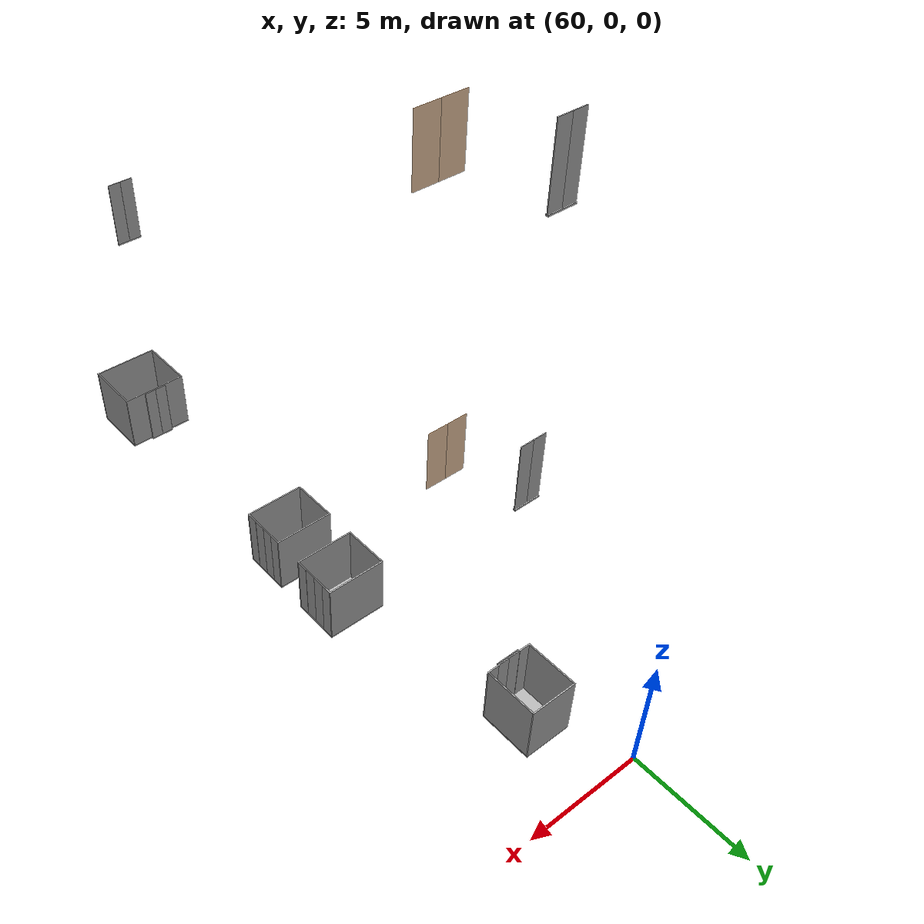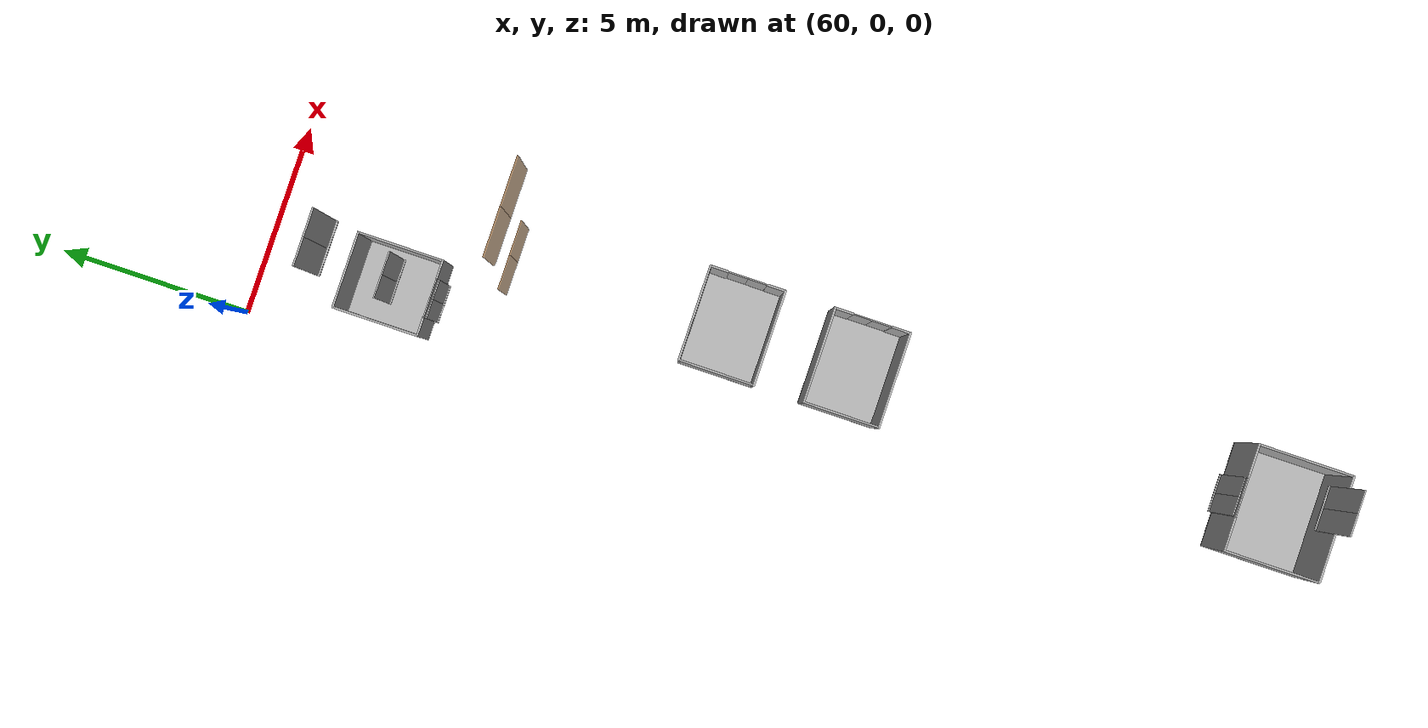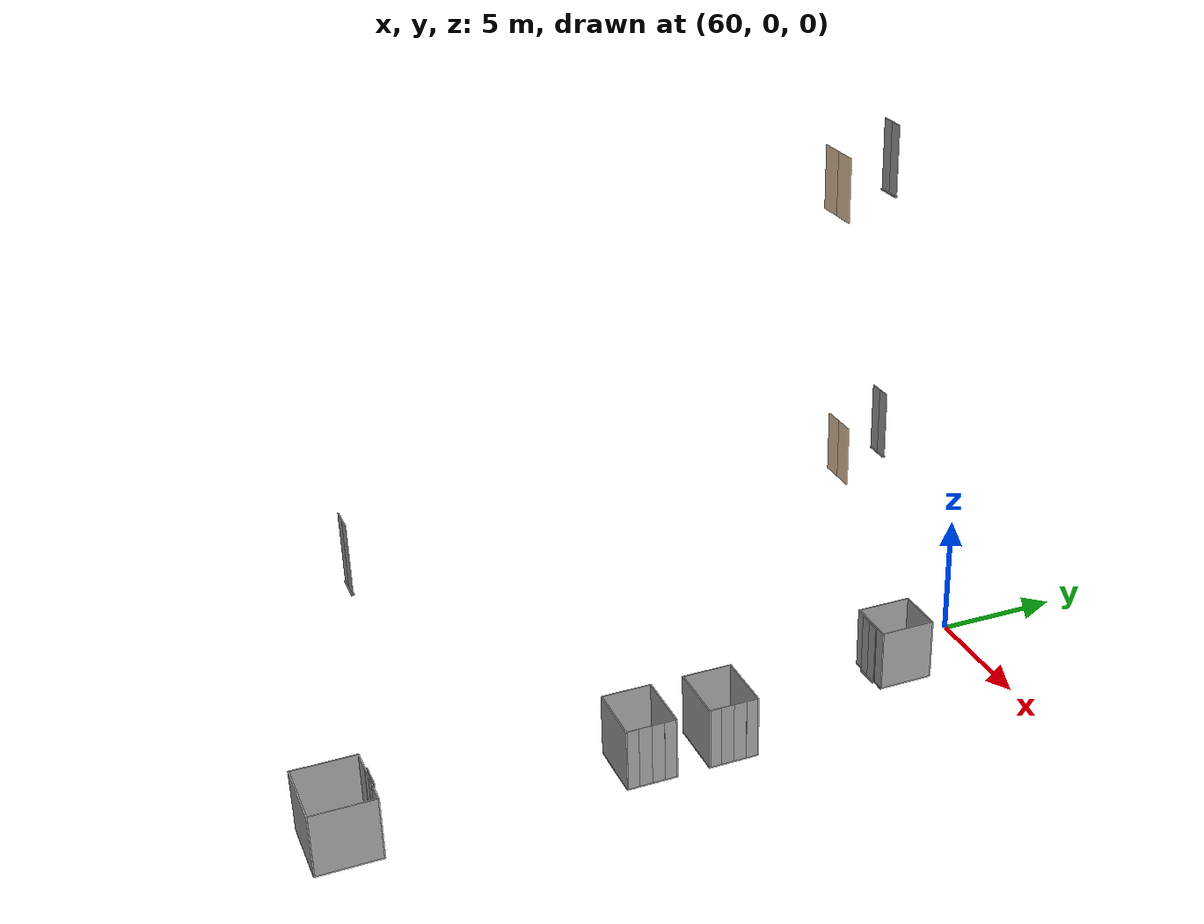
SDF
<sdf version="1.7">
 <world name="world">
  <include><uri>model://sun</uri></include>
  <model name="conf_door7">
   <pose>63.050000000000004 -7.0 10.0 0 0 3.141592653589793</pose>
   <link name="right">
    <pose>0.375 0 1.11 0 0 0</pose>
    <visual name="right_visual">
     <geometry><box><size>0.74 0.03 2.2</size></box></geometry>
     <material><ambient>0.5 0.25 0 0.6</ambient><diffuse>0.5 0.25 0 0.6</diffuse></material>
    </visual>
    <collision name="right_collision">
     <geometry><box><size>0.74 0.03 2.2</size></box></geometry>
     <surface><contact><collide_bitmask>0x02</collide_bitmask></contact></surface>
    </collision>
    <inertial>
     <mass>50.0</mass>
     <inertia><ixx>20.17041666666667</ixx><iyy>22.448333333333338</iyy><izz>2.285416666666667</izz></inertia>
    </inertial>
   </link>
   <joint name="right_joint" type="revolute">
    <parent>world</parent>
    <child>right</child>
    <axis><xyz>0 0 1</xyz><limit><lower>0</lower><upper>1.57</upper></limit></axis>
    <pose>0.375 0 0 0 0 0</pose>
   </joint>
   <link name="left">
    <pose>-0.375 0 1.11 0 0 0</pose>
    <visual name="left_visual">
     <geometry><box><size>0.74 0.03 2.2</size></box></geometry>
     <material><ambient>0.5 0.25 0 0.6</ambient><diffuse>0.5 0.25 0 0.6</diffuse></material>
    </visual>
    <collision name="left_collision">
     <geometry><box><size>0.74 0.03 2.2</size></box></geometry>
     <surface><contact><collide_bitmask>0x02</collide_bitmask></contact></surface>
    </collision>
    <inertial>
     <mass>50.0</mass>
     <inertia><ixx>20.17041666666667</ixx><iyy>22.448333333333338</iyy><izz>2.285416666666667</izz></inertia>
    </inertial>
   </link>
   <joint name="left_joint" type="revolute">
    <parent>world</parent>
    <child>left</child>
    <axis><xyz>0 0 1</xyz><limit><lower>-1.57</lower><upper>0</upper></limit></axis>
    <pose>-0.375 0 0 0 0 0</pose>
   </joint>
   <plugin name="door" filename="libdoor.so">
    <v_max_door>0.5</v_max_door>
    <a_max_door>0.3</a_max_door>
    <a_nom_door>0.15</a_nom_door>
    <dx_min_door>0.01</dx_min_door>
    <f_max_door>500.0</f_max_door>
    <door name="conf_door7" type="DoubleSwingDoor" left_joint_name="left_joint" right_joint_name="right_joint"/>
   </plugin>
  </model>
  <model name="door4">
   <pose>63.325 -7.5 20.0 0 0 3.141592653589793</pose>
   <link name="right">
    <pose>0.4375 0 1.11 0 0 0</pose>
    <visual name="right_visual">
     <geometry><box><size>0.865 0.03 2.2</size></box></geometry>
     <material><ambient>0.5 0.25 0 0.6</ambient><diffuse>0.5 0.25 0 0.6</diffuse></material>
    </visual>
    <collision name="right_collision">
     <geometry><box><size>0.865 0.03 2.2</size></box></geometry>
     <surface><contact><collide_bitmask>0x02</collide_bitmask></contact></surface>
    </collision>
    <inertial>
     <mass>50.0</mass>
     <inertia><ixx>20.17041666666667</ixx><iyy>23.284270833333338</iyy><izz>3.121354166666667</izz></inertia>
    </inertial>
   </link>
   <joint name="right_joint" type="revolute">
    <parent>world</parent>
    <child>right</child>
    <axis><xyz>0 0 1</xyz><limit><lower>0</lower><upper>1.57</upper></limit></axis>
    <pose>0.4375 0 0 0 0 0</pose>
   </joint>
   <link name="left">
    <pose>-0.4375 0 1.11 0 0 0</pose>
    <visual name="left_visual">
     <geometry><box><size>0.865 0.03 2.2</size></box></geometry>
     <material><ambient>0.5 0.25 0 0.6</ambient><diffuse>0.5 0.25 0 0.6</diffuse></material>
    </visual>
    <collision name="left_collision">
     <geometry><box><size>0.865 0.03 2.2</size></box></geometry>
     <surface><contact><collide_bitmask>0x02</collide_bitmask></contact></surface>
    </collision>
    <inertial>
     <mass>50.0</mass>
     <inertia><ixx>20.17041666666667</ixx><iyy>23.284270833333338</iyy><izz>3.121354166666667</izz></inertia>
    </inertial>
   </link>
   <joint name="left_joint" type="revolute">
    <parent>world</parent>
    <child>left</child>
    <axis><xyz>0 0 1</xyz><limit><lower>-1.57</lower><upper>0</upper></limit></axis>
    <pose>-0.4375 0 0 0 0 0</pose>
   </joint>
   <plugin name="door" filename="libdoor.so">
    <v_max_door>0.5</v_max_door>
    <a_max_door>0.3</a_max_door>
    <a_nom_door>0.15</a_nom_door>
    <dx_min_door>0.01</dx_min_door>
    <f_max_door>500.0</f_max_door>
    <door name="door4" type="DoubleSwingDoor" left_joint_name="left_joint" right_joint_name="right_joint"/>
   </plugin>
  </model>
  <model name="Lift1">
   <link name="platform">
    <inertial>
     <mass>1200</mass>
     <inertia><ixx>400.25000000000006</ixx><iyy>506.50000000000006</iyy><izz>906.25</izz></inertia>
    </inertial>
    <visual name="floor">
     <pose>0 0 -0.025 0 0 0</pose>
     <geometry><box><size>2.0 2.25 0.05</size></box></geometry>
     <material>
      <ambient>0.5 0.5 0.5 1</ambient>
      <diffuse>0.7 0.7 0.7 1</diffuse>
      <specular>0.6 0.6 0.6 1</specular>
      <emissive>0.1 0.1 0.1 1</emissive>
     </material>
    </visual>
    <collision name="floor">
     <pose>0 0 -0.025 0 0 0</pose>
     <geometry><box><size>2.0 2.25 0.05</size></box></geometry>
     <surface><contact><collide_bitmask>0x01</collide_bitmask></contact></surface>
    </collision>
    <visual name="frontwall1">
     <pose>0.0 1.1 1.25 0 0 0</pose>
     <geometry><box><size>2.0 0.05 2.5</size></box></geometry>
     <material>
      <ambient>0.5 0.5 0.5 1</ambient>
      <diffuse>0.7 0.7 0.7 1</diffuse>
      <specular>0.6 0.6 0.6 1</specular>
      <emissive>0.1 0.1 0.1 1</emissive>
     </material>
    </visual>
    <collision name="frontwall1">
     <pose>0.0 1.1 1.25 0 0 0</pose>
     <geometry><box><size>2.0 0.05 2.5</size></box></geometry>
     <surface><contact><collide_bitmask>0x01</collide_bitmask></contact></surface>
    </collision>
    <visual name="backwall1">
     <pose>-0.75 -1.1 1.25 0 0 0</pose>
     <geometry><box><size>0.5 0.05 2.5</size></box></geometry>
     <material>
      <ambient>0.5 0.5 0.5 1</ambient>
      <diffuse>0.7 0.7 0.7 1</diffuse>
      <specular>0.6 0.6 0.6 1</specular>
      <emissive>0.1 0.1 0.1 1</emissive>
     </material>
    </visual>
    <collision name="backwall1">
     <pose>-0.75 -1.1 1.25 0 0 0</pose>
     <geometry><box><size>0.5 0.05 2.5</size></box></geometry>
     <surface><contact><collide_bitmask>0x01</collide_bitmask></contact></surface>
    </collision>
    <visual name="backwall2">
     <pose>0.75 -1.1 1.25 0 0 0</pose>
     <geometry><box><size>0.5 0.05 2.5</size></box></geometry>
     <material>
      <ambient>0.5 0.5 0.5 1</ambient>
      <diffuse>0.7 0.7 0.7 1</diffuse>
      <specular>0.6 0.6 0.6 1</specular>
      <emissive>0.1 0.1 0.1 1</emissive>
     </material>
    </visual>
    <collision name="backwall2">
     <pose>0.75 -1.1 1.25 0 0 0</pose>
     <geometry><box><size>0.5 0.05 2.5</size></box></geometry>
     <surface><contact><collide_bitmask>0x01</collide_bitmask></contact></surface>
    </collision>
    <visual name="leftwall1">
     <pose>-0.975 0.0 1.25 0 0 1.5707963267948966</pose>
     <geometry><box><size>2.15 0.05 2.5</size></box></geometry>
     <material>
      <ambient>0.5 0.5 0.5 1</ambient>
      <diffuse>0.7 0.7 0.7 1</diffuse>
      <specular>0.6 0.6 0.6 1</specular>
      <emissive>0.1 0.1 0.1 1</emissive>
     </material>
    </visual>
    <collision name="leftwall1">
     <pose>-0.975 0.0 1.25 0 0 1.5707963267948966</pose>
     <geometry><box><size>2.15 0.05 2.5</size></box></geometry>
     <surface><contact><collide_bitmask>0x01</collide_bitmask></contact></surface>
    </collision>
    <visual name="rightwall1">
     <pose>0.975 0.0 1.25 0 0 1.5707963267948966</pose>
     <geometry><box><size>2.15 0.05 2.5</size></box></geometry>
     <material>
      <ambient>0.5 0.5 0.5 1</ambient>
      <diffuse>0.7 0.7 0.7 1</diffuse>
      <specular>0.6 0.6 0.6 1</specular>
      <emissive>0.1 0.1 0.1 1</emissive>
     </material>
    </visual>
    <collision name="rightwall1">
     <pose>0.975 0.0 1.25 0 0 1.5707963267948966</pose>
     <geometry><box><size>2.15 0.05 2.5</size></box></geometry>
     <surface><contact><collide_bitmask>0x01</collide_bitmask></contact></surface>
    </collision>
   </link>
   <joint name="cabin_joint" type="prismatic">
    <parent>world</parent>
    <child>platform</child>
    <axis><xyz>0 0 1</xyz></axis>
   </joint>
   <model name="CabinDoor_Lift1_door">
    <pose>0.0 -1.1 0 0 0 0.0</pose>
    <link name="right_door">
     <pose>0.25 0 1.25 0 0 0</pose>
     <visual name="right_door_visual">
      <geometry><box><size>0.5 0.03 2.5</size></box></geometry>
      <material>
       <ambient>0.5 0.5 0.5 1</ambient>
       <diffuse>0.7 0.7 0.7 1</diffuse>
       <specular>0.6 0.6 0.6 1</specular>
       <emissive>0.1 0.1 0.1 1</emissive>
      </material>
     </visual>
     <collision name="right_door_collision">
      <geometry><box><size>0.5 0.03 2.5</size></box></geometry>
      <surface><contact><collide_bitmask>0x02</collide_bitmask></contact></surface>
     </collision>
    </link>
    <joint name="right_joint" type="prismatic">
     <parent>platform</parent>
     <child>right_door</child>
     <axis><xyz>1 0 0</xyz><limit><lower>0</lower><upper>0.5</upper></limit></axis>
    </joint>
    <link name="left_door">
     <pose>-0.25 0 1.25 0 0 0</pose>
     <visual name="left_door_visual">
      <geometry><box><size>0.5 0.03 2.5</size></box></geometry>
      <material>
       <ambient>0.5 0.5 0.5 1</ambient>
       <diffuse>0.7 0.7 0.7 1</diffuse>
       <specular>0.6 0.6 0.6 1</specular>
       <emissive>0.1 0.1 0.1 1</emissive>
      </material>
     </visual>
     <collision name="left_door_collision">
      <geometry><box><size>0.5 0.03 2.5</size></box></geometry>
      <surface><contact><collide_bitmask>0x02</collide_bitmask></contact></surface>
     </collision>
    </link>
    <joint name="left_joint" type="prismatic">
     <parent>platform</parent>
     <child>left_door</child>
     <axis><xyz>1 0 0</xyz><limit><lower>-0.5</lower><upper>0</upper></limit></axis>
    </joint>
    <plugin name="door" filename="libdoor.so">
     <v_max_door>0.3</v_max_door>
     <a_max_door>0.2</a_max_door>
     <a_nom_door>0.1</a_nom_door>
     <dx_min_door>0.0001</dx_min_door>
     <f_max_door>35.0</f_max_door>
     <door left_joint_name="left_joint" name="CabinDoor_Lift1_door" right_joint_name="right_joint" type="DoubleSlidingDoor"/>
    </plugin>
   </model>
   <plugin name="lift" filename="liblift.so">
    <lift_name>Lift1</lift_name>
    <floor name="L1" elevation="0.0">
     <door_pair cabin_door="CabinDoor_Lift1_door" shaft_door="ShaftDoor_Lift1_L1_door"/>
    </floor>
    <floor name="L2" elevation="10.0">
     <door_pair cabin_door="CabinDoor_Lift1_door" shaft_door="ShaftDoor_Lift1_L2_door"/>
    </floor>
    <initial_floor>L1</initial_floor>
    <v_max_cabin>2.0</v_max_cabin>
    <a_max_cabin>1.2</a_max_cabin>
    <a_nom_cabin>1.0</a_nom_cabin>
    <dx_min_cabin>0.001</dx_min_cabin>
    <f_max_cabin>25323.0</f_max_cabin>
    <cabin_joint_name>cabin_joint</cabin_joint_name>
   </plugin>
   <pose>61.825 -3.5 0 0 0 0.0</pose>
  </model>
  <model name="ShaftDoor_cargo_lift1_L1_door">
   <pose>61.825 -4.675 0.0 0 0 0.0</pose>
   <link name="right_door">
    <pose>0.25 0 1.25 0 0 0</pose>
    <visual name="right_door_visual">
     <geometry><box><size>0.5 0.03 2.5</size></box></geometry>
     <material>
      <ambient>0.5 0.5 0.5 1</ambient>
      <diffuse>0.7 0.7 0.7 1</diffuse>
      <specular>0.6 0.6 0.6 1</specular>
      <emissive>0.1 0.1 0.1 1</emissive>
     </material>
    </visual>
    <collision name="right_door_collision">
     <geometry><box><size>0.5 0.03 2.5</size></box></geometry>
     <surface><contact><collide_bitmask>0x02</collide_bitmask></contact></surface>
    </collision>
   </link>
   <joint name="right_joint" type="prismatic">
    <parent>world</parent>
    <child>right_door</child>
    <axis><xyz>1 0 0</xyz><limit><lower>0</lower><upper>0.5</upper></limit></axis>
   </joint>
   <link name="left_door">
    <pose>-0.25 0 1.25 0 0 0</pose>
    <visual name="left_door_visual">
     <geometry><box><size>0.5 0.03 2.5</size></box></geometry>
     <material>
      <ambient>0.5 0.5 0.5 1</ambient>
      <diffuse>0.7 0.7 0.7 1</diffuse>
      <specular>0.6 0.6 0.6 1</specular>
      <emissive>0.1 0.1 0.1 1</emissive>
     </material>
    </visual>
    <collision name="left_door_collision">
     <geometry><box><size>0.5 0.03 2.5</size></box></geometry>
     <surface><contact><collide_bitmask>0x02</collide_bitmask></contact></surface>
    </collision>
   </link>
   <joint name="left_joint" type="prismatic">
    <parent>world</parent>
    <child>left_door</child>
    <axis><xyz>1 0 0</xyz><limit><lower>-0.5</lower><upper>0</upper></limit></axis>
   </joint>
   <link name="ramp">
    <pose>0 0 -0.025 0 0 0</pose>
    <visual name="ramp_visual">
     <geometry><box><size>1.0 0.1 0.05</size></box></geometry>
     <material>
      <ambient>0.5 0.5 0.5 1</ambient>
      <diffuse>0.7 0.7 0.7 1</diffuse>
      <specular>0.6 0.6 0.6 1</specular>
      <emissive>0.1 0.1 0.1 1</emissive>
     </material>
    </visual>
    <collision name="ramp_collision">
     <geometry><box><size>1.0 0.1 0.05</size></box></geometry>
     <surface><contact><collide_bitmask>0x02</collide_bitmask></contact></surface>
    </collision>
   </link>
   <joint name="ramp_joint" type="fixed"><parent>world</parent><child>ramp</child></joint>
   <plugin name="door" filename="libdoor.so">
    <v_max_door>0.3</v_max_door>
    <a_max_door>0.2</a_max_door>
    <a_nom_door>0.1</a_nom_door>
    <dx_min_door>0.0001</dx_min_door>
    <f_max_door>35.0</f_max_door>
    <door left_joint_name="left_joint" name="ShaftDoor_cargo_lift1_L1_door" right_joint_name="right_joint" type="DoubleSlidingDoor"/>
   </plugin>
  </model>
  <model name="ShaftDoor_cargo_lift1_L2_door">
   <pose>61.825 -4.675 10.0 0 0 0.0</pose>
   <link name="right_door">
    <pose>0.25 0 1.25 0 0 0</pose>
    <visual name="right_door_visual">
     <geometry><box><size>0.5 0.03 2.5</size></box></geometry>
     <material>
      <ambient>0.5 0.5 0.5 1</ambient>
      <diffuse>0.7 0.7 0.7 1</diffuse>
      <specular>0.6 0.6 0.6 1</specular>
      <emissive>0.1 0.1 0.1 1</emissive>
     </material>
    </visual>
    <collision name="right_door_collision">
     <geometry><box><size>0.5 0.03 2.5</size></box></geometry>
     <surface><contact><collide_bitmask>0x02</collide_bitmask></contact></surface>
    </collision>
   </link>
   <joint name="right_joint" type="prismatic">
    <parent>world</parent>
    <child>right_door</child>
    <axis><xyz>1 0 0</xyz><limit><lower>0</lower><upper>0.5</upper></limit></axis>
   </joint>
   <link name="left_door">
    <pose>-0.25 0 1.25 0 0 0</pose>
    <visual name="left_door_visual">
     <geometry><box><size>0.5 0.03 2.5</size></box></geometry>
     <material>
      <ambient>0.5 0.5 0.5 1</ambient>
      <diffuse>0.7 0.7 0.7 1</diffuse>
      <specular>0.6 0.6 0.6 1</specular>
      <emissive>0.1 0.1 0.1 1</emissive>
     </material>
    </visual>
    <collision name="left_door_collision">
     <geometry><box><size>0.5 0.03 2.5</size></box></geometry>
     <surface><contact><collide_bitmask>0x02</collide_bitmask></contact></surface>
    </collision>
   </link>
   <joint name="left_joint" type="prismatic">
    <parent>world</parent>
    <child>left_door</child>
    <axis><xyz>1 0 0</xyz><limit><lower>-0.5</lower><upper>0</upper></limit></axis>
   </joint>
   <link name="ramp">
    <pose>0 0 -0.025 0 0 0</pose>
    <visual name="ramp_visual">
     <geometry><box><size>1.0 0.1 0.05</size></box></geometry>
     <material>
      <ambient>0.5 0.5 0.5 1</ambient>
      <diffuse>0.7 0.7 0.7 1</diffuse>
      <specular>0.6 0.6 0.6 1</specular>
      <emissive>0.1 0.1 0.1 1</emissive>
     </material>
    </visual>
    <collision name="ramp_collision">
     <geometry><box><size>1.0 0.1 0.05</size></box></geometry>
     <surface><contact><collide_bitmask>0x02</collide_bitmask></contact></surface>
    </collision>
   </link>
   <joint name="ramp_joint" type="fixed"><parent>world</parent><child>ramp</child></joint>
   <plugin name="door" filename="libdoor.so">
    <v_max_door>0.3</v_max_door>
    <a_max_door>0.2</a_max_door>
    <a_nom_door>0.1</a_nom_door>
    <dx_min_door>0.0001</dx_min_door>
    <f_max_door>35.0</f_max_door>
    <door left_joint_name="left_joint" name="ShaftDoor_cargo_lift1_L2_door" right_joint_name="right_joint" type="DoubleSlidingDoor"/>
   </plugin>
  </model>
  <model name="ShaftDoor_cargo_lift1_L3_door">
   <pose>61.825 -4.675 20.0 0 0 0.0</pose>
   <link name="right_door">
    <pose>0.25 0 1.25 0 0 0</pose>
    <visual name="right_door_visual">
     <geometry><box><size>0.5 0.03 2.5</size></box></geometry>
     <material>
      <ambient>0.5 0.5 0.5 1</ambient>
      <diffuse>0.7 0.7 0.7 1</diffuse>
      <specular>0.6 0.6 0.6 1</specular>
      <emissive>0.1 0.1 0.1 1</emissive>
     </material>
    </visual>
    <collision name="right_door_collision">
     <geometry><box><size>0.5 0.03 2.5</size></box></geometry>
     <surface><contact><collide_bitmask>0x02</collide_bitmask></contact></surface>
    </collision>
   </link>
   <joint name="right_joint" type="prismatic">
    <parent>world</parent>
    <child>right_door</child>
    <axis><xyz>1 0 0</xyz><limit><lower>0</lower><upper>0.5</upper></limit></axis>
   </joint>
   <link name="left_door">
    <pose>-0.25 0 1.25 0 0 0</pose>
    <visual name="left_door_visual">
     <geometry><box><size>0.5 0.03 2.5</size></box></geometry>
     <material>
      <ambient>0.5 0.5 0.5 1</ambient>
      <diffuse>0.7 0.7 0.7 1</diffuse>
      <specular>0.6 0.6 0.6 1</specular>
      <emissive>0.1 0.1 0.1 1</emissive>
     </material>
    </visual>
    <collision name="left_door_collision">
     <geometry><box><size>0.5 0.03 2.5</size></box></geometry>
     <surface><contact><collide_bitmask>0x02</collide_bitmask></contact></surface>
    </collision>
   </link>
   <joint name="left_joint" type="prismatic">
    <parent>world</parent>
    <child>left_door</child>
    <axis><xyz>1 0 0</xyz><limit><lower>-0.5</lower><upper>0</upper></limit></axis>
   </joint>
   <link name="ramp">
    <pose>0 0 -0.025 0 0 0</pose>
    <visual name="ramp_visual">
     <geometry><box><size>1.0 0.1 0.05</size></box></geometry>
     <material>
      <ambient>0.5 0.5 0.5 1</ambient>
      <diffuse>0.7 0.7 0.7 1</diffuse>
      <specular>0.6 0.6 0.6 1</specular>
      <emissive>0.1 0.1 0.1 1</emissive>
     </material>
    </visual>
    <collision name="ramp_collision">
     <geometry><box><size>1.0 0.1 0.05</size></box></geometry>
     <surface><contact><collide_bitmask>0x02</collide_bitmask></contact></surface>
    </collision>
   </link>
   <joint name="ramp_joint" type="fixed"><parent>world</parent><child>ramp</child></joint>
   <plugin name="door" filename="libdoor.so">
    <v_max_door>0.3</v_max_door>
    <a_max_door>0.2</a_max_door>
    <a_nom_door>0.1</a_nom_door>
    <dx_min_door>0.0001</dx_min_door>
    <f_max_door>35.0</f_max_door>
    <door left_joint_name="left_joint" name="ShaftDoor_cargo_lift1_L3_door" right_joint_name="right_joint" type="DoubleSlidingDoor"/>
   </plugin>
  </model>
  <model name="cargo_lift1">
   <link name="platform">
    <inertial>
     <mass>1200</mass>
     <inertia><ixx>400.25000000000006</ixx><iyy>506.50000000000006</iyy><izz>906.25</izz></inertia>
    </inertial>
    <visual name="floor">
     <pose>0 0 -0.025 0 0 0</pose>
     <geometry><box><size>2.0 2.25 0.05</size></box></geometry>
     <material>
      <ambient>0.5 0.5 0.5 1</ambient>
      <diffuse>0.7 0.7 0.7 1</diffuse>
      <specular>0.6 0.6 0.6 1</specular>
      <emissive>0.1 0.1 0.1 1</emissive>
     </material>
    </visual>
    <collision name="floor">
     <pose>0 0 -0.025 0 0 0</pose>
     <geometry><box><size>2.0 2.25 0.05</size></box></geometry>
     <surface><contact><collide_bitmask>0x01</collide_bitmask></contact></surface>
    </collision>
    <visual name="frontwall1">
     <pose>0.0 1.1 1.25 0 0 0</pose>
     <geometry><box><size>2.0 0.05 2.5</size></box></geometry>
     <material>
      <ambient>0.5 0.5 0.5 1</ambient>
      <diffuse>0.7 0.7 0.7 1</diffuse>
      <specular>0.6 0.6 0.6 1</specular>
      <emissive>0.1 0.1 0.1 1</emissive>
     </material>
    </visual>
    <collision name="frontwall1">
     <pose>0.0 1.1 1.25 0 0 0</pose>
     <geometry><box><size>2.0 0.05 2.5</size></box></geometry>
     <surface><contact><collide_bitmask>0x01</collide_bitmask></contact></surface>
    </collision>
    <visual name="backwall1">
     <pose>-0.75 -1.1 1.25 0 0 0</pose>
     <geometry><box><size>0.5 0.05 2.5</size></box></geometry>
     <material>
      <ambient>0.5 0.5 0.5 1</ambient>
      <diffuse>0.7 0.7 0.7 1</diffuse>
      <specular>0.6 0.6 0.6 1</specular>
      <emissive>0.1 0.1 0.1 1</emissive>
     </material>
    </visual>
    <collision name="backwall1">
     <pose>-0.75 -1.1 1.25 0 0 0</pose>
     <geometry><box><size>0.5 0.05 2.5</size></box></geometry>
     <surface><contact><collide_bitmask>0x01</collide_bitmask></contact></surface>
    </collision>
    <visual name="backwall2">
     <pose>0.75 -1.1 1.25 0 0 0</pose>
     <geometry><box><size>0.5 0.05 2.5</size></box></geometry>
     <material>
      <ambient>0.5 0.5 0.5 1</ambient>
      <diffuse>0.7 0.7 0.7 1</diffuse>
      <specular>0.6 0.6 0.6 1</specular>
      <emissive>0.1 0.1 0.1 1</emissive>
     </material>
    </visual>
    <collision name="backwall2">
     <pose>0.75 -1.1 1.25 0 0 0</pose>
     <geometry><box><size>0.5 0.05 2.5</size></box></geometry>
     <surface><contact><collide_bitmask>0x01</collide_bitmask></contact></surface>
    </collision>
    <visual name="leftwall1">
     <pose>-0.975 0.0 1.25 0 0 1.5707963267948966</pose>
     <geometry><box><size>2.15 0.05 2.5</size></box></geometry>
     <material>
      <ambient>0.5 0.5 0.5 1</ambient>
      <diffuse>0.7 0.7 0.7 1</diffuse>
      <specular>0.6 0.6 0.6 1</specular>
      <emissive>0.1 0.1 0.1 1</emissive>
     </material>
    </visual>
    <collision name="leftwall1">
     <pose>-0.975 0.0 1.25 0 0 1.5707963267948966</pose>
     <geometry><box><size>2.15 0.05 2.5</size></box></geometry>
     <surface><contact><collide_bitmask>0x01</collide_bitmask></contact></surface>
    </collision>
    <visual name="rightwall1">
     <pose>0.975 0.0 1.25 0 0 1.5707963267948966</pose>
     <geometry><box><size>2.15 0.05 2.5</size></box></geometry>
     <material>
      <ambient>0.5 0.5 0.5 1</ambient>
      <diffuse>0.7 0.7 0.7 1</diffuse>
      <specular>0.6 0.6 0.6 1</specular>
      <emissive>0.1 0.1 0.1 1</emissive>
     </material>
    </visual>
    <collision name="rightwall1">
     <pose>0.975 0.0 1.25 0 0 1.5707963267948966</pose>
     <geometry><box><size>2.15 0.05 2.5</size></box></geometry>
     <surface><contact><collide_bitmask>0x01</collide_bitmask></contact></surface>
    </collision>
   </link>
   <joint name="cabin_joint" type="prismatic">
    <parent>world</parent>
    <child>platform</child>
    <axis><xyz>0 0 1</xyz></axis>
   </joint>
   <model name="CabinDoor_cargo_lift1_door">
    <pose>0.0 -1.1 0 0 0 0.0</pose>
    <link name="right_door">
     <pose>0.25 0 1.25 0 0 0</pose>
     <visual name="right_door_visual">
      <geometry><box><size>0.5 0.03 2.5</size></box></geometry>
      <material>
       <ambient>0.5 0.5 0.5 1</ambient>
       <diffuse>0.7 0.7 0.7 1</diffuse>
       <specular>0.6 0.6 0.6 1</specular>
       <emissive>0.1 0.1 0.1 1</emissive>
      </material>
     </visual>
     <collision name="right_door_collision">
      <geometry><box><size>0.5 0.03 2.5</size></box></geometry>
      <surface><contact><collide_bitmask>0x02</collide_bitmask></contact></surface>
     </collision>
    </link>
    <joint name="right_joint" type="prismatic">
     <parent>platform</parent>
     <child>right_door</child>
     <axis><xyz>1 0 0</xyz><limit><lower>0</lower><upper>0.5</upper></limit></axis>
    </joint>
    <link name="left_door">
     <pose>-0.25 0 1.25 0 0 0</pose>
     <visual name="left_door_visual">
      <geometry><box><size>0.5 0.03 2.5</size></box></geometry>
      <material>
       <ambient>0.5 0.5 0.5 1</ambient>
       <diffuse>0.7 0.7 0.7 1</diffuse>
       <specular>0.6 0.6 0.6 1</specular>
       <emissive>0.1 0.1 0.1 1</emissive>
      </material>
     </visual>
     <collision name="left_door_collision">
      <geometry><box><size>0.5 0.03 2.5</size></box></geometry>
      <surface><contact><collide_bitmask>0x02</collide_bitmask></contact></surface>
     </collision>
    </link>
    <joint name="left_joint" type="prismatic">
     <parent>platform</parent>
     <child>left_door</child>
     <axis><xyz>1 0 0</xyz><limit><lower>-0.5</lower><upper>0</upper></limit></axis>
    </joint>
    <plugin name="door" filename="libdoor.so">
     <v_max_door>0.3</v_max_door>
     <a_max_door>0.2</a_max_door>
     <a_nom_door>0.1</a_nom_door>
     <dx_min_door>0.0001</dx_min_door>
     <f_max_door>35.0</f_max_door>
     <door left_joint_name="left_joint" name="CabinDoor_cargo_lift1_door" right_joint_name="right_joint" type="DoubleSlidingDoor"/>
    </plugin>
   </model>
   <plugin name="lift" filename="liblift.so">
    <lift_name>cargo_lift1</lift_name>
    <floor name="L1" elevation="0.0">
     <door_pair cabin_door="CabinDoor_cargo_lift1_door" shaft_door="ShaftDoor_cargo_lift1_L1_door"/>
    </floor>
    <floor name="L2" elevation="10.0">
     <door_pair cabin_door="CabinDoor_cargo_lift1_door" shaft_door="ShaftDoor_cargo_lift1_L2_door"/>
    </floor>
    <floor name="L3" elevation="20.0">
     <door_pair cabin_door="CabinDoor_cargo_lift1_door" shaft_door="ShaftDoor_cargo_lift1_L3_door"/>
    </floor>
    <initial_floor>L1</initial_floor>
    <v_max_cabin>2.0</v_max_cabin>
    <a_max_cabin>1.2</a_max_cabin>
    <a_nom_cabin>1.0</a_nom_cabin>
    <dx_min_cabin>0.001</dx_min_cabin>
    <f_max_cabin>25323.0</f_max_cabin>
    <cabin_joint_name>cabin_joint</cabin_joint_name>
   </plugin>
   <pose>61.825 -3.5 0 0 0 0.0</pose>
  </model>
  <model name="guest_lift1">
   <link name="platform">
    <inertial>
     <mass>1200</mass>
     <inertia><ixx>625.25</ixx><iyy>400.25000000000006</iyy><izz>1025.0</izz></inertia>
    </inertial>
    <visual name="floor">
     <pose>0 0 -0.025 0 0 0</pose>
     <geometry><box><size>2.5 2.0 0.05</size></box></geometry>
     <material>
      <ambient>0.5 0.5 0.5 1</ambient>
      <diffuse>0.7 0.7 0.7 1</diffuse>
      <specular>0.6 0.6 0.6 1</specular>
      <emissive>0.1 0.1 0.1 1</emissive>
     </material>
    </visual>
    <collision name="floor">
     <pose>0 0 -0.025 0 0 0</pose>
     <geometry><box><size>2.5 2.0 0.05</size></box></geometry>
     <surface><contact><collide_bitmask>0x01</collide_bitmask></contact></surface>
    </collision>
    <visual name="frontwall1">
     <pose>0.0 0.975 1.25 0 0 0</pose>
     <geometry><box><size>2.5 0.05 2.5</size></box></geometry>
     <material>
      <ambient>0.5 0.5 0.5 1</ambient>
      <diffuse>0.7 0.7 0.7 1</diffuse>
      <specular>0.6 0.6 0.6 1</specular>
      <emissive>0.1 0.1 0.1 1</emissive>
     </material>
    </visual>
    <collision name="frontwall1">
     <pose>0.0 0.975 1.25 0 0 0</pose>
     <geometry><box><size>2.5 0.05 2.5</size></box></geometry>
     <surface><contact><collide_bitmask>0x01</collide_bitmask></contact></surface>
    </collision>
    <visual name="backwall1">
     <pose>0.0 -0.975 1.25 0 0 0</pose>
     <geometry><box><size>2.5 0.05 2.5</size></box></geometry>
     <material>
      <ambient>0.5 0.5 0.5 1</ambient>
      <diffuse>0.7 0.7 0.7 1</diffuse>
      <specular>0.6 0.6 0.6 1</specular>
      <emissive>0.1 0.1 0.1 1</emissive>
     </material>
    </visual>
    <collision name="backwall1">
     <pose>0.0 -0.975 1.25 0 0 0</pose>
     <geometry><box><size>2.5 0.05 2.5</size></box></geometry>
     <surface><contact><collide_bitmask>0x01</collide_bitmask></contact></surface>
    </collision>
    <visual name="leftwall1">
     <pose>-1.225 0.0 1.25 0 0 1.5707963267948966</pose>
     <geometry><box><size>1.9 0.05 2.5</size></box></geometry>
     <material>
      <ambient>0.5 0.5 0.5 1</ambient>
      <diffuse>0.7 0.7 0.7 1</diffuse>
      <specular>0.6 0.6 0.6 1</specular>
      <emissive>0.1 0.1 0.1 1</emissive>
     </material>
    </visual>
    <collision name="leftwall1">
     <pose>-1.225 0.0 1.25 0 0 1.5707963267948966</pose>
     <geometry><box><size>1.9 0.05 2.5</size></box></geometry>
     <surface><contact><collide_bitmask>0x01</collide_bitmask></contact></surface>
    </collision>
    <visual name="rightwall1">
     <pose>1.225 -0.725 1.25 0 0 1.5707963267948966</pose>
     <geometry><box><size>0.44999999999999996 0.05 2.5</size></box></geometry>
     <material>
      <ambient>0.5 0.5 0.5 1</ambient>
      <diffuse>0.7 0.7 0.7 1</diffuse>
      <specular>0.6 0.6 0.6 1</specular>
      <emissive>0.1 0.1 0.1 1</emissive>
     </material>
    </visual>
    <collision name="rightwall1">
     <pose>1.225 -0.725 1.25 0 0 1.5707963267948966</pose>
     <geometry><box><size>0.44999999999999996 0.05 2.5</size></box></geometry>
     <surface><contact><collide_bitmask>0x01</collide_bitmask></contact></surface>
    </collision>
    <visual name="rightwall2">
     <pose>1.225 0.725 1.25 0 0 1.5707963267948966</pose>
     <geometry><box><size>0.44999999999999996 0.05 2.5</size></box></geometry>
     <material>
      <ambient>0.5 0.5 0.5 1</ambient>
      <diffuse>0.7 0.7 0.7 1</diffuse>
      <specular>0.6 0.6 0.6 1</specular>
      <emissive>0.1 0.1 0.1 1</emissive>
     </material>
    </visual>
    <collision name="rightwall2">
     <pose>1.225 0.725 1.25 0 0 1.5707963267948966</pose>
     <geometry><box><size>0.44999999999999996 0.05 2.5</size></box></geometry>
     <surface><contact><collide_bitmask>0x01</collide_bitmask></contact></surface>
    </collision>
   </link>
   <joint name="cabin_joint" type="prismatic">
    <parent>world</parent>
    <child>platform</child>
    <axis><xyz>0 0 1</xyz></axis>
   </joint>
   <model name="CabinDoor_guest_lift1_door">
    <pose>1.225 0.0 0 0 0 1.5708</pose>
    <link name="right_door">
     <pose>0.25 0 1.25 0 0 0</pose>
     <visual name="right_door_visual">
      <geometry><box><size>0.5 0.03 2.5</size></box></geometry>
      <material>
       <ambient>0.5 0.5 0.5 1</ambient>
       <diffuse>0.7 0.7 0.7 1</diffuse>
       <specular>0.6 0.6 0.6 1</specular>
       <emissive>0.1 0.1 0.1 1</emissive>
      </material>
     </visual>
     <collision name="right_door_collision">
      <geometry><box><size>0.5 0.03 2.5</size></box></geometry>
      <surface><contact><collide_bitmask>0x02</collide_bitmask></contact></surface>
     </collision>
    </link>
    <joint name="right_joint" type="prismatic">
     <parent>platform</parent>
     <child>right_door</child>
     <axis><xyz>1 0 0</xyz><limit><lower>0</lower><upper>0.5</upper></limit></axis>
    </joint>
    <link name="left_door">
     <pose>-0.25 0 1.25 0 0 0</pose>
     <visual name="left_door_visual">
      <geometry><box><size>0.5 0.03 2.5</size></box></geometry>
      <material>
       <ambient>0.5 0.5 0.5 1</ambient>
       <diffuse>0.7 0.7 0.7 1</diffuse>
       <specular>0.6 0.6 0.6 1</specular>
       <emissive>0.1 0.1 0.1 1</emissive>
      </material>
     </visual>
     <collision name="left_door_collision">
      <geometry><box><size>0.5 0.03 2.5</size></box></geometry>
      <surface><contact><collide_bitmask>0x02</collide_bitmask></contact></surface>
     </collision>
    </link>
    <joint name="left_joint" type="prismatic">
     <parent>platform</parent>
     <child>left_door</child>
     <axis><xyz>1 0 0</xyz><limit><lower>-0.5</lower><upper>0</upper></limit></axis>
    </joint>
    <plugin name="door" filename="libdoor.so">
     <v_max_door>0.3</v_max_door>
     <a_max_door>0.2</a_max_door>
     <a_nom_door>0.1</a_nom_door>
     <dx_min_door>0.0001</dx_min_door>
     <f_max_door>35.0</f_max_door>
     <door left_joint_name="left_joint" name="CabinDoor_guest_lift1_door" right_joint_name="right_joint" type="DoubleSlidingDoor"/>
    </plugin>
   </model>
   <plugin name="lift" filename="liblift.so">
    <lift_name>guest_lift1</lift_name>
    <floor name="L1" elevation="0.0">
     <door_pair cabin_door="CabinDoor_guest_lift1_door" shaft_door="ShaftDoor_guest_lift1_L1_door"/>
    </floor>
    <floor name="L2" elevation="10.0">
     <door_pair cabin_door="CabinDoor_guest_lift1_door" shaft_door="ShaftDoor_guest_lift1_L2_door"/>
    </floor>
    <floor name="L3" elevation="20.0">
     <door_pair cabin_door="CabinDoor_guest_lift1_door" shaft_door="ShaftDoor_guest_lift1_L3_door"/>
    </floor>
    <initial_floor>L1</initial_floor>
    <v_max_cabin>2.0</v_max_cabin>
    <a_max_cabin>1.2</a_max_cabin>
    <a_nom_cabin>1.0</a_nom_cabin>
    <dx_min_cabin>0.001</dx_min_cabin>
    <f_max_cabin>25323.0</f_max_cabin>
    <cabin_joint_name>cabin_joint</cabin_joint_name>
   </plugin>
   <pose>63.575 -11.875 0 0 0 0.0</pose>
  </model>
  <model name="guest_lift2">
   <link name="platform">
    <inertial>
     <mass>1200</mass>
     <inertia><ixx>625.25</ixx><iyy>400.25000000000006</iyy><izz>1025.0</izz></inertia>
    </inertial>
    <visual name="floor">
     <pose>0 0 -0.025 0 0 0</pose>
     <geometry><box><size>2.5 2.0 0.05</size></box></geometry>
     <material>
      <ambient>0.5 0.5 0.5 1</ambient>
      <diffuse>0.7 0.7 0.7 1</diffuse>
      <specular>0.6 0.6 0.6 1</specular>
      <emissive>0.1 0.1 0.1 1</emissive>
     </material>
    </visual>
    <collision name="floor">
     <pose>0 0 -0.025 0 0 0</pose>
     <geometry><box><size>2.5 2.0 0.05</size></box></geometry>
     <surface><contact><collide_bitmask>0x01</collide_bitmask></contact></surface>
    </collision>
    <visual name="frontwall1">
     <pose>0.0 0.975 1.25 0 0 0</pose>
     <geometry><box><size>2.5 0.05 2.5</size></box></geometry>
     <material>
      <ambient>0.5 0.5 0.5 1</ambient>
      <diffuse>0.7 0.7 0.7 1</diffuse>
      <specular>0.6 0.6 0.6 1</specular>
      <emissive>0.1 0.1 0.1 1</emissive>
     </material>
    </visual>
    <collision name="frontwall1">
     <pose>0.0 0.975 1.25 0 0 0</pose>
     <geometry><box><size>2.5 0.05 2.5</size></box></geometry>
     <surface><contact><collide_bitmask>0x01</collide_bitmask></contact></surface>
    </collision>
    <visual name="backwall1">
     <pose>0.0 -0.975 1.25 0 0 0</pose>
     <geometry><box><size>2.5 0.05 2.5</size></box></geometry>
     <material>
      <ambient>0.5 0.5 0.5 1</ambient>
      <diffuse>0.7 0.7 0.7 1</diffuse>
      <specular>0.6 0.6 0.6 1</specular>
      <emissive>0.1 0.1 0.1 1</emissive>
     </material>
    </visual>
    <collision name="backwall1">
     <pose>0.0 -0.975 1.25 0 0 0</pose>
     <geometry><box><size>2.5 0.05 2.5</size></box></geometry>
     <surface><contact><collide_bitmask>0x01</collide_bitmask></contact></surface>
    </collision>
    <visual name="leftwall1">
     <pose>-1.225 0.0 1.25 0 0 1.5707963267948966</pose>
     <geometry><box><size>1.9 0.05 2.5</size></box></geometry>
     <material>
      <ambient>0.5 0.5 0.5 1</ambient>
      <diffuse>0.7 0.7 0.7 1</diffuse>
      <specular>0.6 0.6 0.6 1</specular>
      <emissive>0.1 0.1 0.1 1</emissive>
     </material>
    </visual>
    <collision name="leftwall1">
     <pose>-1.225 0.0 1.25 0 0 1.5707963267948966</pose>
     <geometry><box><size>1.9 0.05 2.5</size></box></geometry>
     <surface><contact><collide_bitmask>0x01</collide_bitmask></contact></surface>
    </collision>
    <visual name="rightwall1">
     <pose>1.225 -0.725 1.25 0 0 1.5707963267948966</pose>
     <geometry><box><size>0.44999999999999996 0.05 2.5</size></box></geometry>
     <material>
      <ambient>0.5 0.5 0.5 1</ambient>
      <diffuse>0.7 0.7 0.7 1</diffuse>
      <specular>0.6 0.6 0.6 1</specular>
      <emissive>0.1 0.1 0.1 1</emissive>
     </material>
    </visual>
    <collision name="rightwall1">
     <pose>1.225 -0.725 1.25 0 0 1.5707963267948966</pose>
     <geometry><box><size>0.44999999999999996 0.05 2.5</size></box></geometry>
     <surface><contact><collide_bitmask>0x01</collide_bitmask></contact></surface>
    </collision>
    <visual name="rightwall2">
     <pose>1.225 0.725 1.25 0 0 1.5707963267948966</pose>
     <geometry><box><size>0.44999999999999996 0.05 2.5</size></box></geometry>
     <material>
      <ambient>0.5 0.5 0.5 1</ambient>
      <diffuse>0.7 0.7 0.7 1</diffuse>
      <specular>0.6 0.6 0.6 1</specular>
      <emissive>0.1 0.1 0.1 1</emissive>
     </material>
    </visual>
    <collision name="rightwall2">
     <pose>1.225 0.725 1.25 0 0 1.5707963267948966</pose>
     <geometry><box><size>0.44999999999999996 0.05 2.5</size></box></geometry>
     <surface><contact><collide_bitmask>0x01</collide_bitmask></contact></surface>
    </collision>
   </link>
   <joint name="cabin_joint" type="prismatic">
    <parent>world</parent>
    <child>platform</child>
    <axis><xyz>0 0 1</xyz></axis>
   </joint>
   <model name="CabinDoor_guest_lift2_door">
    <pose>1.225 0.0 0 0 0 1.5708</pose>
    <link name="right_door">
     <pose>0.25 0 1.25 0 0 0</pose>
     <visual name="right_door_visual">
      <geometry><box><size>0.5 0.03 2.5</size></box></geometry>
      <material>
       <ambient>0.5 0.5 0.5 1</ambient>
       <diffuse>0.7 0.7 0.7 1</diffuse>
       <specular>0.6 0.6 0.6 1</specular>
       <emissive>0.1 0.1 0.1 1</emissive>
      </material>
     </visual>
     <collision name="right_door_collision">
      <geometry><box><size>0.5 0.03 2.5</size></box></geometry>
      <surface><contact><collide_bitmask>0x02</collide_bitmask></contact></surface>
     </collision>
    </link>
    <joint name="right_joint" type="prismatic">
     <parent>platform</parent>
     <child>right_door</child>
     <axis><xyz>1 0 0</xyz><limit><lower>0</lower><upper>0.5</upper></limit></axis>
    </joint>
    <link name="left_door">
     <pose>-0.25 0 1.25 0 0 0</pose>
     <visual name="left_door_visual">
      <geometry><box><size>0.5 0.03 2.5</size></box></geometry>
      <material>
       <ambient>0.5 0.5 0.5 1</ambient>
       <diffuse>0.7 0.7 0.7 1</diffuse>
       <specular>0.6 0.6 0.6 1</specular>
       <emissive>0.1 0.1 0.1 1</emissive>
      </material>
     </visual>
     <collision name="left_door_collision">
      <geometry><box><size>0.5 0.03 2.5</size></box></geometry>
      <surface><contact><collide_bitmask>0x02</collide_bitmask></contact></surface>
     </collision>
    </link>
    <joint name="left_joint" type="prismatic">
     <parent>platform</parent>
     <child>left_door</child>
     <axis><xyz>1 0 0</xyz><limit><lower>-0.5</lower><upper>0</upper></limit></axis>
    </joint>
    <plugin name="door" filename="libdoor.so">
     <v_max_door>0.3</v_max_door>
     <a_max_door>0.2</a_max_door>
     <a_nom_door>0.1</a_nom_door>
     <dx_min_door>0.0001</dx_min_door>
     <f_max_door>35.0</f_max_door>
     <door left_joint_name="left_joint" name="CabinDoor_guest_lift2_door" right_joint_name="right_joint" type="DoubleSlidingDoor"/>
    </plugin>
   </model>
   <plugin name="lift" filename="liblift.so">
    <lift_name>guest_lift2</lift_name>
    <floor name="L1" elevation="0.0">
     <door_pair cabin_door="CabinDoor_guest_lift2_door" shaft_door="ShaftDoor_guest_lift2_L1_door"/>
    </floor>
    <floor name="L2" elevation="10.0">
     <door_pair cabin_door="CabinDoor_guest_lift2_door" shaft_door="ShaftDoor_guest_lift2_L2_door"/>
    </floor>
    <floor name="L3" elevation="20.0">
     <door_pair cabin_door="CabinDoor_guest_lift2_door" shaft_door="ShaftDoor_guest_lift2_L3_door"/>
    </floor>
    <initial_floor>L1</initial_floor>
    <v_max_cabin>2.0</v_max_cabin>
    <a_max_cabin>1.2</a_max_cabin>
    <a_nom_cabin>1.0</a_nom_cabin>
    <dx_min_cabin>0.001</dx_min_cabin>
    <f_max_cabin>25323.0</f_max_cabin>
    <cabin_joint_name>cabin_joint</cabin_joint_name>
   </plugin>
   <pose>63.575 -15.125 0 0 0 0.0</pose>
  </model>
  <model name="ShaftDoor_guest_lift5_L1_door">
   <pose>63.575 -25.025000000000002 0.0 0 0 0.0</pose>
   <link name="right_door">
    <pose>0.25 0 1.25 0 0 0</pose>
    <visual name="right_door_visual">
     <geometry><box><size>0.5 0.03 2.5</size></box></geometry>
     <material>
      <ambient>0.5 0.5 0.5 1</ambient>
      <diffuse>0.7 0.7 0.7 1</diffuse>
      <specular>0.6 0.6 0.6 1</specular>
      <emissive>0.1 0.1 0.1 1</emissive>
     </material>
    </visual>
    <collision name="right_door_collision">
     <geometry><box><size>0.5 0.03 2.5</size></box></geometry>
     <surface><contact><collide_bitmask>0x02</collide_bitmask></contact></surface>
    </collision>
   </link>
   <joint name="right_joint" type="prismatic">
    <parent>world</parent>
    <child>right_door</child>
    <axis><xyz>1 0 0</xyz><limit><lower>0</lower><upper>0.5</upper></limit></axis>
   </joint>
   <link name="left_door">
    <pose>-0.25 0 1.25 0 0 0</pose>
    <visual name="left_door_visual">
     <geometry><box><size>0.5 0.03 2.5</size></box></geometry>
     <material>
      <ambient>0.5 0.5 0.5 1</ambient>
      <diffuse>0.7 0.7 0.7 1</diffuse>
      <specular>0.6 0.6 0.6 1</specular>
      <emissive>0.1 0.1 0.1 1</emissive>
     </material>
    </visual>
    <collision name="left_door_collision">
     <geometry><box><size>0.5 0.03 2.5</size></box></geometry>
     <surface><contact><collide_bitmask>0x02</collide_bitmask></contact></surface>
    </collision>
   </link>
   <joint name="left_joint" type="prismatic">
    <parent>world</parent>
    <child>left_door</child>
    <axis><xyz>1 0 0</xyz><limit><lower>-0.5</lower><upper>0</upper></limit></axis>
   </joint>
   <link name="ramp">
    <pose>0 0 -0.025 0 0 0</pose>
    <visual name="ramp_visual">
     <geometry><box><size>1.0 0.1 0.05</size></box></geometry>
     <material>
      <ambient>0.5 0.5 0.5 1</ambient>
      <diffuse>0.7 0.7 0.7 1</diffuse>
      <specular>0.6 0.6 0.6 1</specular>
      <emissive>0.1 0.1 0.1 1</emissive>
     </material>
    </visual>
    <collision name="ramp_collision">
     <geometry><box><size>1.0 0.1 0.05</size></box></geometry>
     <surface><contact><collide_bitmask>0x02</collide_bitmask></contact></surface>
    </collision>
   </link>
   <joint name="ramp_joint" type="fixed"><parent>world</parent><child>ramp</child></joint>
   <plugin name="door" filename="libdoor.so">
    <v_max_door>0.3</v_max_door>
    <a_max_door>0.2</a_max_door>
    <a_nom_door>0.1</a_nom_door>
    <dx_min_door>0.0001</dx_min_door>
    <f_max_door>35.0</f_max_door>
    <door left_joint_name="left_joint" name="ShaftDoor_guest_lift5_L1_door" right_joint_name="right_joint" type="DoubleSlidingDoor"/>
   </plugin>
  </model>
  <model name="ShaftDoor_guest_lift5_L2_door">
   <pose>63.575 -25.025000000000002 10.0 0 0 0.0</pose>
   <link name="right_door">
    <pose>0.25 0 1.25 0 0 0</pose>
    <visual name="right_door_visual">
     <geometry><box><size>0.5 0.03 2.5</size></box></geometry>
     <material>
      <ambient>0.5 0.5 0.5 1</ambient>
      <diffuse>0.7 0.7 0.7 1</diffuse>
      <specular>0.6 0.6 0.6 1</specular>
      <emissive>0.1 0.1 0.1 1</emissive>
     </material>
    </visual>
    <collision name="right_door_collision">
     <geometry><box><size>0.5 0.03 2.5</size></box></geometry>
     <surface><contact><collide_bitmask>0x02</collide_bitmask></contact></surface>
    </collision>
   </link>
   <joint name="right_joint" type="prismatic">
    <parent>world</parent>
    <child>right_door</child>
    <axis><xyz>1 0 0</xyz><limit><lower>0</lower><upper>0.5</upper></limit></axis>
   </joint>
   <link name="left_door">
    <pose>-0.25 0 1.25 0 0 0</pose>
    <visual name="left_door_visual">
     <geometry><box><size>0.5 0.03 2.5</size></box></geometry>
     <material>
      <ambient>0.5 0.5 0.5 1</ambient>
      <diffuse>0.7 0.7 0.7 1</diffuse>
      <specular>0.6 0.6 0.6 1</specular>
      <emissive>0.1 0.1 0.1 1</emissive>
     </material>
    </visual>
    <collision name="left_door_collision">
     <geometry><box><size>0.5 0.03 2.5</size></box></geometry>
     <surface><contact><collide_bitmask>0x02</collide_bitmask></contact></surface>
    </collision>
   </link>
   <joint name="left_joint" type="prismatic">
    <parent>world</parent>
    <child>left_door</child>
    <axis><xyz>1 0 0</xyz><limit><lower>-0.5</lower><upper>0</upper></limit></axis>
   </joint>
   <link name="ramp">
    <pose>0 0 -0.025 0 0 0</pose>
    <visual name="ramp_visual">
     <geometry><box><size>1.0 0.1 0.05</size></box></geometry>
     <material>
      <ambient>0.5 0.5 0.5 1</ambient>
      <diffuse>0.7 0.7 0.7 1</diffuse>
      <specular>0.6 0.6 0.6 1</specular>
      <emissive>0.1 0.1 0.1 1</emissive>
     </material>
    </visual>
    <collision name="ramp_collision">
     <geometry><box><size>1.0 0.1 0.05</size></box></geometry>
     <surface><contact><collide_bitmask>0x02</collide_bitmask></contact></surface>
    </collision>
   </link>
   <joint name="ramp_joint" type="fixed"><parent>world</parent><child>ramp</child></joint>
   <plugin name="door" filename="libdoor.so">
    <v_max_door>0.3</v_max_door>
    <a_max_door>0.2</a_max_door>
    <a_nom_door>0.1</a_nom_door>
    <dx_min_door>0.0001</dx_min_door>
    <f_max_door>35.0</f_max_door>
    <door left_joint_name="left_joint" name="ShaftDoor_guest_lift5_L2_door" right_joint_name="right_joint" type="DoubleSlidingDoor"/>
   </plugin>
  </model>
  <model name="guest_lift5">
   <link name="platform">
    <inertial>
     <mass>1200</mass>
     <inertia><ixx>784.2499999999999</ixx><iyy>625.25</iyy><izz>1409.0</izz></inertia>
    </inertial>
    <visual name="floor">
     <pose>0 0 -0.025 0 0 0</pose>
     <geometry><box><size>2.8 2.5 0.05</size></box></geometry>
     <material>
      <ambient>0.5 0.5 0.5 1</ambient>
      <diffuse>0.7 0.7 0.7 1</diffuse>
      <specular>0.6 0.6 0.6 1</specular>
      <emissive>0.1 0.1 0.1 1</emissive>
     </material>
    </visual>
    <collision name="floor">
     <pose>0 0 -0.025 0 0 0</pose>
     <geometry><box><size>2.8 2.5 0.05</size></box></geometry>
     <surface><contact><collide_bitmask>0x01</collide_bitmask></contact></surface>
    </collision>
    <visual name="frontwall1">
     <pose>-0.95 1.225 1.25 0 0 0</pose>
     <geometry><box><size>0.8999999999999999 0.05 2.5</size></box></geometry>
     <material>
      <ambient>0.5 0.5 0.5 1</ambient>
      <diffuse>0.7 0.7 0.7 1</diffuse>
      <specular>0.6 0.6 0.6 1</specular>
      <emissive>0.1 0.1 0.1 1</emissive>
     </material>
    </visual>
    <collision name="frontwall1">
     <pose>-0.95 1.225 1.25 0 0 0</pose>
     <geometry><box><size>0.8999999999999999 0.05 2.5</size></box></geometry>
     <surface><contact><collide_bitmask>0x01</collide_bitmask></contact></surface>
    </collision>
    <visual name="frontwall2">
     <pose>0.95 1.225 1.25 0 0 0</pose>
     <geometry><box><size>0.8999999999999999 0.05 2.5</size></box></geometry>
     <material>
      <ambient>0.5 0.5 0.5 1</ambient>
      <diffuse>0.7 0.7 0.7 1</diffuse>
      <specular>0.6 0.6 0.6 1</specular>
      <emissive>0.1 0.1 0.1 1</emissive>
     </material>
    </visual>
    <collision name="frontwall2">
     <pose>0.95 1.225 1.25 0 0 0</pose>
     <geometry><box><size>0.8999999999999999 0.05 2.5</size></box></geometry>
     <surface><contact><collide_bitmask>0x01</collide_bitmask></contact></surface>
    </collision>
    <visual name="backwall1">
     <pose>0.0 -1.225 1.25 0 0 0</pose>
     <geometry><box><size>2.8 0.05 2.5</size></box></geometry>
     <material>
      <ambient>0.5 0.5 0.5 1</ambient>
      <diffuse>0.7 0.7 0.7 1</diffuse>
      <specular>0.6 0.6 0.6 1</specular>
      <emissive>0.1 0.1 0.1 1</emissive>
     </material>
    </visual>
    <collision name="backwall1">
     <pose>0.0 -1.225 1.25 0 0 0</pose>
     <geometry><box><size>2.8 0.05 2.5</size></box></geometry>
     <surface><contact><collide_bitmask>0x01</collide_bitmask></contact></surface>
    </collision>
    <visual name="leftwall1">
     <pose>-1.375 0.0 1.25 0 0 1.5707963267948966</pose>
     <geometry><box><size>2.4 0.05 2.5</size></box></geometry>
     <material>
      <ambient>0.5 0.5 0.5 1</ambient>
      <diffuse>0.7 0.7 0.7 1</diffuse>
      <specular>0.6 0.6 0.6 1</specular>
      <emissive>0.1 0.1 0.1 1</emissive>
     </material>
    </visual>
    <collision name="leftwall1">
     <pose>-1.375 0.0 1.25 0 0 1.5707963267948966</pose>
     <geometry><box><size>2.4 0.05 2.5</size></box></geometry>
     <surface><contact><collide_bitmask>0x01</collide_bitmask></contact></surface>
    </collision>
    <visual name="rightwall1">
     <pose>1.375 0.0 1.25 0 0 1.5707963267948966</pose>
     <geometry><box><size>2.4 0.05 2.5</size></box></geometry>
     <material>
      <ambient>0.5 0.5 0.5 1</ambient>
      <diffuse>0.7 0.7 0.7 1</diffuse>
      <specular>0.6 0.6 0.6 1</specular>
      <emissive>0.1 0.1 0.1 1</emissive>
     </material>
    </visual>
    <collision name="rightwall1">
     <pose>1.375 0.0 1.25 0 0 1.5707963267948966</pose>
     <geometry><box><size>2.4 0.05 2.5</size></box></geometry>
     <surface><contact><collide_bitmask>0x01</collide_bitmask></contact></surface>
    </collision>
   </link>
   <joint name="cabin_joint" type="prismatic">
    <parent>world</parent>
    <child>platform</child>
    <axis><xyz>0 0 1</xyz></axis>
   </joint>
   <model name="CabinDoor_guest_lift5_door">
    <pose>0.0 1.225 0 0 0 0.0</pose>
    <link name="right_door">
     <pose>0.25 0 1.25 0 0 0</pose>
     <visual name="right_door_visual">
      <geometry><box><size>0.5 0.03 2.5</size></box></geometry>
      <material>
       <ambient>0.5 0.5 0.5 1</ambient>
       <diffuse>0.7 0.7 0.7 1</diffuse>
       <specular>0.6 0.6 0.6 1</specular>
       <emissive>0.1 0.1 0.1 1</emissive>
      </material>
     </visual>
     <collision name="right_door_collision">
      <geometry><box><size>0.5 0.03 2.5</size></box></geometry>
      <surface><contact><collide_bitmask>0x02</collide_bitmask></contact></surface>
     </collision>
    </link>
    <joint name="right_joint" type="prismatic">
     <parent>platform</parent>
     <child>right_door</child>
     <axis><xyz>1 0 0</xyz><limit><lower>0</lower><upper>0.5</upper></limit></axis>
    </joint>
    <link name="left_door">
     <pose>-0.25 0 1.25 0 0 0</pose>
     <visual name="left_door_visual">
      <geometry><box><size>0.5 0.03 2.5</size></box></geometry>
      <material>
       <ambient>0.5 0.5 0.5 1</ambient>
       <diffuse>0.7 0.7 0.7 1</diffuse>
       <specular>0.6 0.6 0.6 1</specular>
       <emissive>0.1 0.1 0.1 1</emissive>
      </material>
     </visual>
     <collision name="left_door_collision">
      <geometry><box><size>0.5 0.03 2.5</size></box></geometry>
      <surface><contact><collide_bitmask>0x02</collide_bitmask></contact></surface>
     </collision>
    </link>
    <joint name="left_joint" type="prismatic">
     <parent>platform</parent>
     <child>left_door</child>
     <axis><xyz>1 0 0</xyz><limit><lower>-0.5</lower><upper>0</upper></limit></axis>
    </joint>
    <plugin name="door" filename="libdoor.so">
     <v_max_door>0.3</v_max_door>
     <a_max_door>0.2</a_max_door>
     <a_nom_door>0.1</a_nom_door>
     <dx_min_door>0.0001</dx_min_door>
     <f_max_door>35.0</f_max_door>
     <door left_joint_name="left_joint" name="CabinDoor_guest_lift5_door" right_joint_name="right_joint" type="DoubleSlidingDoor"/>
    </plugin>
   </model>
   <plugin name="lift" filename="liblift.so">
    <lift_name>guest_lift5</lift_name>
    <floor name="L1" elevation="0.0">
     <door_pair cabin_door="CabinDoor_guest_lift5_door" shaft_door="ShaftDoor_guest_lift5_L1_door"/>
    </floor>
    <floor name="L2" elevation="10.0">
     <door_pair cabin_door="CabinDoor_guest_lift5_door" shaft_door="ShaftDoor_guest_lift5_L2_door"/>
    </floor>
    <initial_floor>L1</initial_floor>
    <v_max_cabin>2.0</v_max_cabin>
    <a_max_cabin>1.2</a_max_cabin>
    <a_nom_cabin>1.0</a_nom_cabin>
    <dx_min_cabin>0.001</dx_min_cabin>
    <f_max_cabin>25323.0</f_max_cabin>
    <cabin_joint_name>cabin_joint</cabin_joint_name>
   </plugin>
   <pose>63.575 -26.325000000000003 0 0 0 0.0</pose>
  </model>
 </world>
</sdf>
